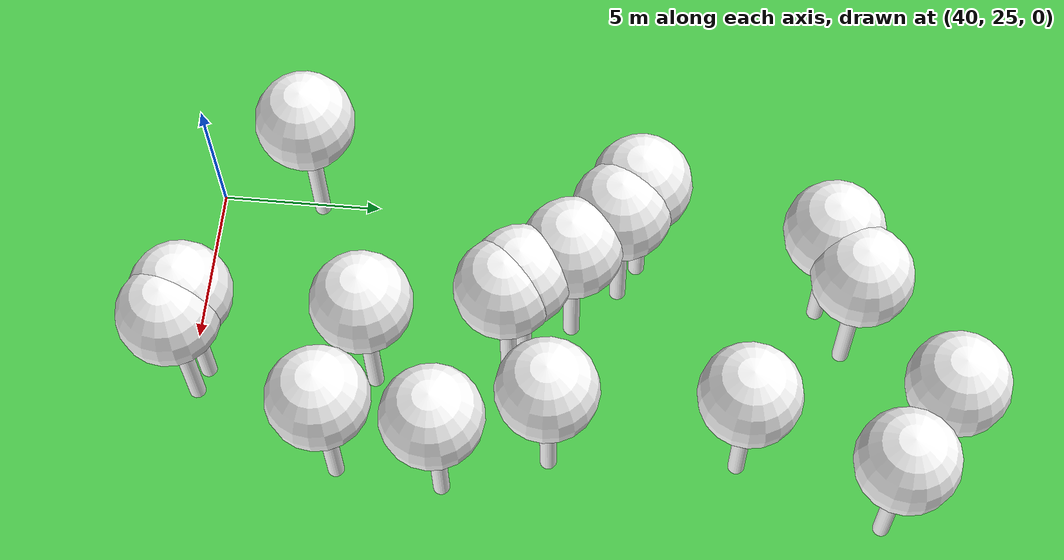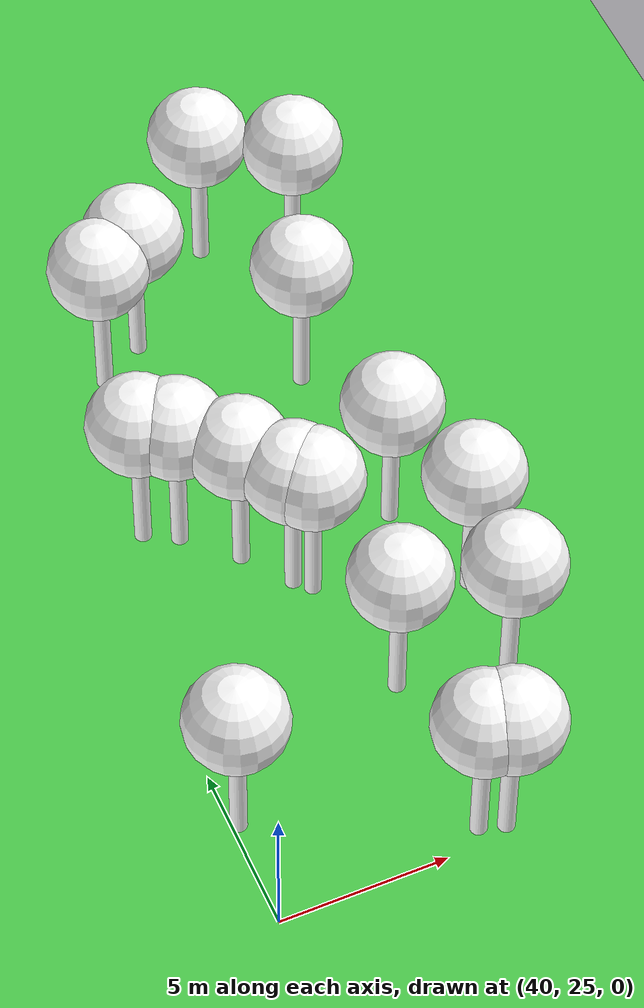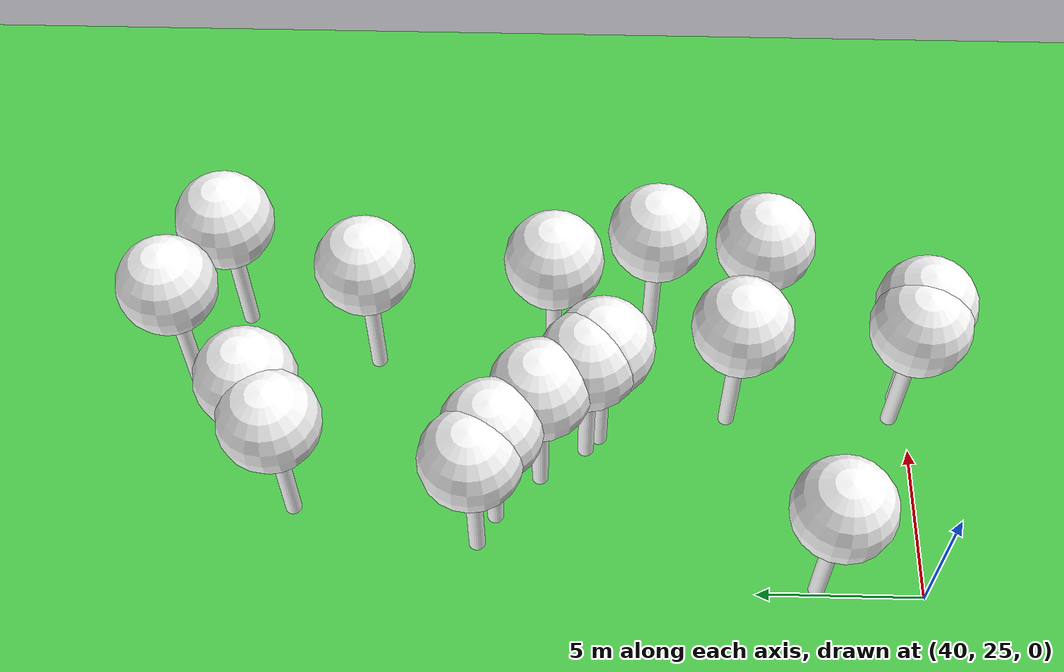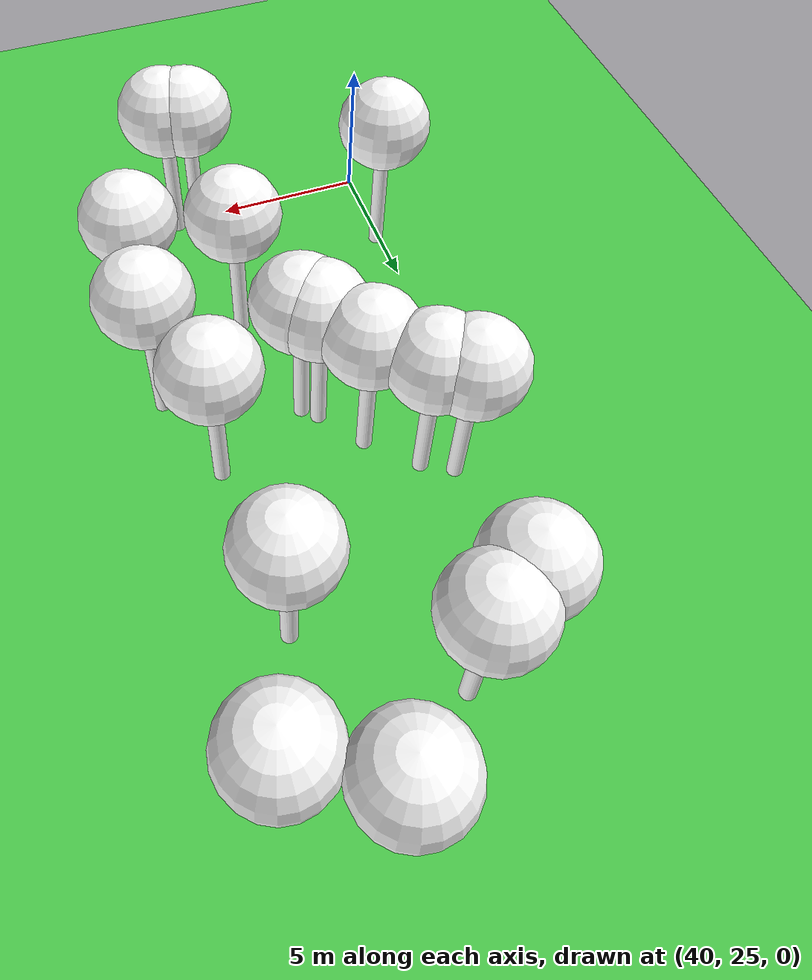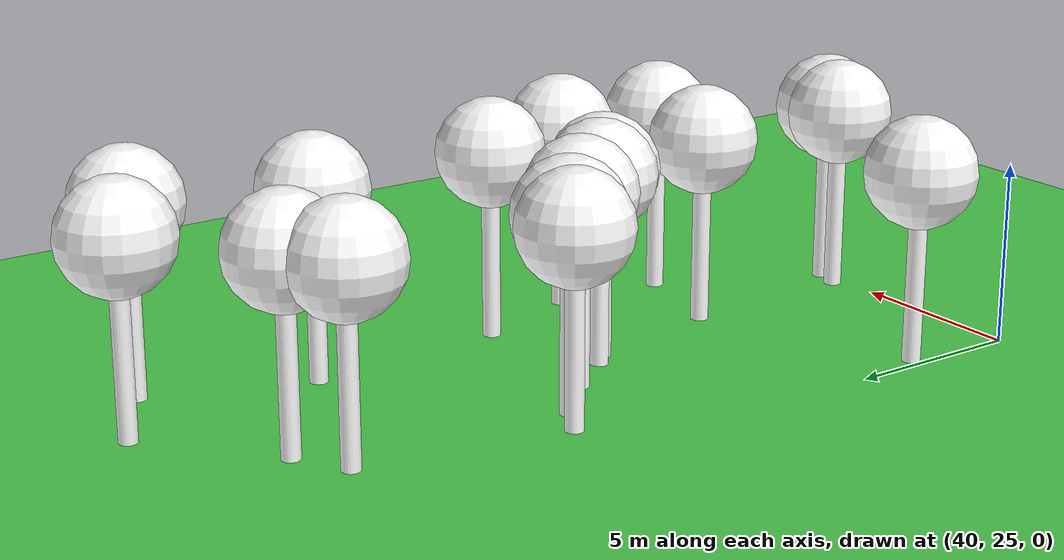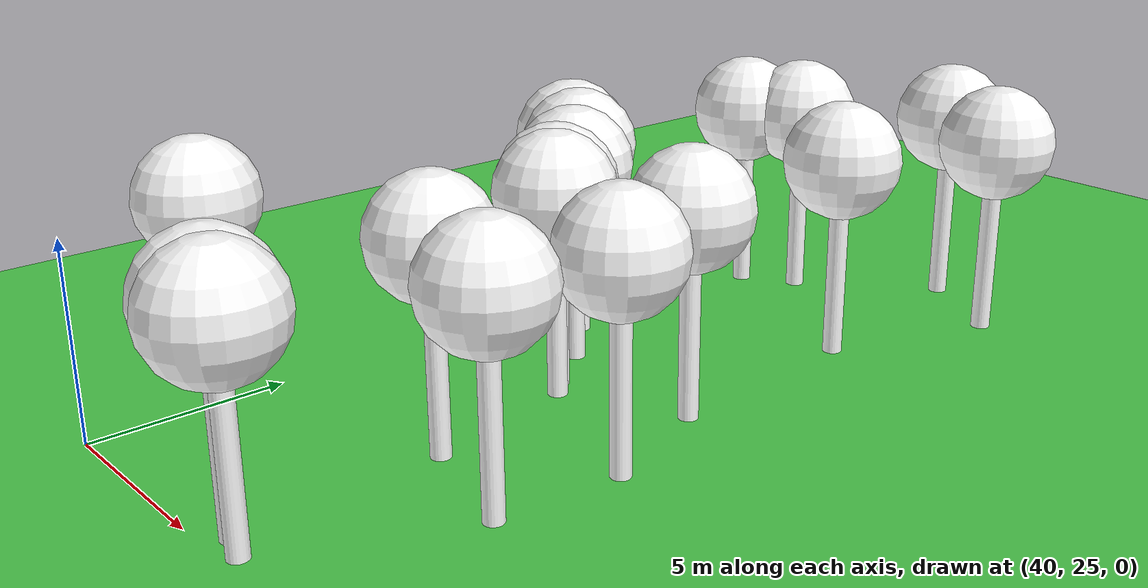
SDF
<sdf version="1.8">
 <world name="forest_world">
  <model name="tree_simple426">
   <static>1</static>
   <link name="link">
    <pose>0 0 0.1 0 -0 0</pose>
    <collision name="collision_trunk">
     <pose>0 0 2 0 -0 0</pose>
     <geometry><cylinder><radius>0.25</radius><length>4</length></cylinder></geometry>
    </collision>
    <collision name="collision_treetop">
     <pose>0 0 5.2 0 -0 0</pose>
     <geometry><sphere><radius>1.5</radius></sphere></geometry>
    </collision>
    <visual name="trunk_426">
     <pose>0 0 2 0 -0 0</pose>
     <geometry><cylinder><radius>0.25</radius><length>4</length></cylinder></geometry>
     <material>
      <ambient>0.5 0.5 0.5 1</ambient>
      <diffuse>1.0 1.0 1.0 1</diffuse>
      <specular>0.0 0.0 0.0 1</specular>
      <pbr>
       <metal>
        <albedo_map>file://textures/tree_simple_trunk.jpg</albedo_map>
        <metalness>0.0</metalness>
        <roughness>0.8</roughness>
       </metal>
      </pbr>
     </material>
    </visual>
    <visual name="treetop_426">
     <pose>0 0 5.2 0 -0 0</pose>
     <geometry><sphere><radius>1.5</radius></sphere></geometry>
     <material>
      <ambient>0.5 0.5 0.5 1</ambient>
      <diffuse>1.0 1.0 1.0 1</diffuse>
      <specular>0.0 0.0 0.0 1</specular>
      <pbr>
       <metal>
        <albedo_map>file://textures/tree_simple_treetop.jpg</albedo_map>
        <metalness>0.0</metalness>
        <roughness>0.9</roughness>
       </metal>
      </pbr>
     </material>
    </visual>
   </link>
   <pose>48.2961501598 36.1951986296 0 0 -0 0</pose>
  </model>
  <model name="tree_simple414">
   <static>1</static>
   <link name="link">
    <pose>0 0 0.1 0 -0 0</pose>
    <collision name="collision_trunk">
     <pose>0 0 2 0 -0 0</pose>
     <geometry><cylinder><radius>0.25</radius><length>4</length></cylinder></geometry>
    </collision>
    <collision name="collision_treetop">
     <pose>0 0 5.2 0 -0 0</pose>
     <geometry><sphere><radius>1.5</radius></sphere></geometry>
    </collision>
    <visual name="trunk_414">
     <pose>0 0 2 0 -0 0</pose>
     <geometry><cylinder><radius>0.25</radius><length>4</length></cylinder></geometry>
     <material>
      <ambient>0.5 0.5 0.5 1</ambient>
      <diffuse>1.0 1.0 1.0 1</diffuse>
      <specular>0.0 0.0 0.0 1</specular>
      <pbr>
       <metal>
        <albedo_map>file://textures/tree_simple_trunk.jpg</albedo_map>
        <metalness>0.0</metalness>
        <roughness>0.8</roughness>
       </metal>
      </pbr>
     </material>
    </visual>
    <visual name="treetop_414">
     <pose>0 0 5.2 0 -0 0</pose>
     <geometry><sphere><radius>1.5</radius></sphere></geometry>
     <material>
      <ambient>0.5 0.5 0.5 1</ambient>
      <diffuse>1.0 1.0 1.0 1</diffuse>
      <specular>0.0 0.0 0.0 1</specular>
      <pbr>
       <metal>
        <albedo_map>file://textures/tree_simple_treetop.jpg</albedo_map>
        <metalness>0.0</metalness>
        <roughness>0.9</roughness>
       </metal>
      </pbr>
     </material>
    </visual>
   </link>
   <pose>44.7953546514 35.1223055557 0 0 -0 0</pose>
  </model>
  <model name="tree_simple402">
   <static>1</static>
   <link name="link">
    <pose>0 0 0.1 0 -0 0</pose>
    <collision name="collision_trunk">
     <pose>0 0 2 0 -0 0</pose>
     <geometry><cylinder><radius>0.25</radius><length>4</length></cylinder></geometry>
    </collision>
    <collision name="collision_treetop">
     <pose>0 0 5.2 0 -0 0</pose>
     <geometry><sphere><radius>1.5</radius></sphere></geometry>
    </collision>
    <visual name="trunk_402">
     <pose>0 0 2 0 -0 0</pose>
     <geometry><cylinder><radius>0.25</radius><length>4</length></cylinder></geometry>
     <material>
      <ambient>0.5 0.5 0.5 1</ambient>
      <diffuse>1.0 1.0 1.0 1</diffuse>
      <specular>0.0 0.0 0.0 1</specular>
      <pbr>
       <metal>
        <albedo_map>file://textures/tree_simple_trunk.jpg</albedo_map>
        <metalness>0.0</metalness>
        <roughness>0.8</roughness>
       </metal>
      </pbr>
     </material>
    </visual>
    <visual name="treetop_402">
     <pose>0 0 5.2 0 -0 0</pose>
     <geometry><sphere><radius>1.5</radius></sphere></geometry>
     <material>
      <ambient>0.5 0.5 0.5 1</ambient>
      <diffuse>1.0 1.0 1.0 1</diffuse>
      <specular>0.0 0.0 0.0 1</specular>
      <pbr>
       <metal>
        <albedo_map>file://textures/tree_simple_treetop.jpg</albedo_map>
        <metalness>0.0</metalness>
        <roughness>0.9</roughness>
       </metal>
      </pbr>
     </material>
    </visual>
   </link>
   <pose>46.1530364681 25.5114731744 0 0 -0 0</pose>
  </model>
  <model name="tree_simple388">
   <static>1</static>
   <link name="link">
    <pose>0 0 0.1 0 -0 0</pose>
    <collision name="collision_trunk">
     <pose>0 0 2 0 -0 0</pose>
     <geometry><cylinder><radius>0.25</radius><length>4</length></cylinder></geometry>
    </collision>
    <collision name="collision_treetop">
     <pose>0 0 5.2 0 -0 0</pose>
     <geometry><sphere><radius>1.5</radius></sphere></geometry>
    </collision>
    <visual name="trunk_388">
     <pose>0 0 2 0 -0 0</pose>
     <geometry><cylinder><radius>0.25</radius><length>4</length></cylinder></geometry>
     <material>
      <ambient>0.5 0.5 0.5 1</ambient>
      <diffuse>1.0 1.0 1.0 1</diffuse>
      <specular>0.0 0.0 0.0 1</specular>
      <pbr>
       <metal>
        <albedo_map>file://textures/tree_simple_trunk.jpg</albedo_map>
        <metalness>0.0</metalness>
        <roughness>0.8</roughness>
       </metal>
      </pbr>
     </material>
    </visual>
    <visual name="treetop_388">
     <pose>0 0 5.2 0 -0 0</pose>
     <geometry><sphere><radius>1.5</radius></sphere></geometry>
     <material>
      <ambient>0.5 0.5 0.5 1</ambient>
      <diffuse>1.0 1.0 1.0 1</diffuse>
      <specular>0.0 0.0 0.0 1</specular>
      <pbr>
       <metal>
        <albedo_map>file://textures/tree_simple_treetop.jpg</albedo_map>
        <metalness>0.0</metalness>
        <roughness>0.9</roughness>
       </metal>
      </pbr>
     </material>
    </visual>
   </link>
   <pose>42.4041487093 37.8396173547 0 0 -0 0</pose>
  </model>
  <model name="tree_simple384">
   <static>1</static>
   <link name="link">
    <pose>0 0 0.1 0 -0 0</pose>
    <collision name="collision_trunk">
     <pose>0 0 2 0 -0 0</pose>
     <geometry><cylinder><radius>0.25</radius><length>4</length></cylinder></geometry>
    </collision>
    <collision name="collision_treetop">
     <pose>0 0 5.2 0 -0 0</pose>
     <geometry><sphere><radius>1.5</radius></sphere></geometry>
    </collision>
    <visual name="trunk_384">
     <pose>0 0 2 0 -0 0</pose>
     <geometry><cylinder><radius>0.25</radius><length>4</length></cylinder></geometry>
     <material>
      <ambient>0.5 0.5 0.5 1</ambient>
      <diffuse>1.0 1.0 1.0 1</diffuse>
      <specular>0.0 0.0 0.0 1</specular>
      <pbr>
       <metal>
        <albedo_map>file://textures/tree_simple_trunk.jpg</albedo_map>
        <metalness>0.0</metalness>
        <roughness>0.8</roughness>
       </metal>
      </pbr>
     </material>
    </visual>
    <visual name="treetop_384">
     <pose>0 0 5.2 0 -0 0</pose>
     <geometry><sphere><radius>1.5</radius></sphere></geometry>
     <material>
      <ambient>0.5 0.5 0.5 1</ambient>
      <diffuse>1.0 1.0 1.0 1</diffuse>
      <specular>0.0 0.0 0.0 1</specular>
      <pbr>
       <metal>
        <albedo_map>file://textures/tree_simple_treetop.jpg</albedo_map>
        <metalness>0.0</metalness>
        <roughness>0.9</roughness>
       </metal>
      </pbr>
     </material>
    </visual>
   </link>
   <pose>47.965270182 41.8315973536 0 0 -0 0</pose>
  </model>
  <model name="tree_simple337">
   <static>1</static>
   <link name="link">
    <pose>0 0 0.1 0 -0 0</pose>
    <collision name="collision_trunk">
     <pose>0 0 2 0 -0 0</pose>
     <geometry><cylinder><radius>0.25</radius><length>4</length></cylinder></geometry>
    </collision>
    <collision name="collision_treetop">
     <pose>0 0 5.2 0 -0 0</pose>
     <geometry><sphere><radius>1.5</radius></sphere></geometry>
    </collision>
    <visual name="trunk_337">
     <pose>0 0 2 0 -0 0</pose>
     <geometry><cylinder><radius>0.25</radius><length>4</length></cylinder></geometry>
     <material>
      <ambient>0.5 0.5 0.5 1</ambient>
      <diffuse>1.0 1.0 1.0 1</diffuse>
      <specular>0.0 0.0 0.0 1</specular>
      <pbr>
       <metal>
        <albedo_map>file://textures/tree_simple_trunk.jpg</albedo_map>
        <metalness>0.0</metalness>
        <roughness>0.8</roughness>
       </metal>
      </pbr>
     </material>
    </visual>
    <visual name="treetop_337">
     <pose>0 0 5.2 0 -0 0</pose>
     <geometry><sphere><radius>1.5</radius></sphere></geometry>
     <material>
      <ambient>0.5 0.5 0.5 1</ambient>
      <diffuse>1.0 1.0 1.0 1</diffuse>
      <specular>0.0 0.0 0.0 1</specular>
      <pbr>
       <metal>
        <albedo_map>file://textures/tree_simple_treetop.jpg</albedo_map>
        <metalness>0.0</metalness>
        <roughness>0.9</roughness>
       </metal>
      </pbr>
     </material>
    </visual>
   </link>
   <pose>43.9549385006 44.8684303608 0 0 -0 0</pose>
  </model>
  <model name="tree_simple306">
   <static>1</static>
   <link name="link">
    <pose>0 0 0.1 0 -0 0</pose>
    <collision name="collision_trunk">
     <pose>0 0 2 0 -0 0</pose>
     <geometry><cylinder><radius>0.25</radius><length>4</length></cylinder></geometry>
    </collision>
    <collision name="collision_treetop">
     <pose>0 0 5.2 0 -0 0</pose>
     <geometry><sphere><radius>1.5</radius></sphere></geometry>
    </collision>
    <visual name="trunk_306">
     <pose>0 0 2 0 -0 0</pose>
     <geometry><cylinder><radius>0.25</radius><length>4</length></cylinder></geometry>
     <material>
      <ambient>0.5 0.5 0.5 1</ambient>
      <diffuse>1.0 1.0 1.0 1</diffuse>
      <specular>0.0 0.0 0.0 1</specular>
      <pbr>
       <metal>
        <albedo_map>file://textures/tree_simple_trunk.jpg</albedo_map>
        <metalness>0.0</metalness>
        <roughness>0.8</roughness>
       </metal>
      </pbr>
     </material>
    </visual>
    <visual name="treetop_306">
     <pose>0 0 5.2 0 -0 0</pose>
     <geometry><sphere><radius>1.5</radius></sphere></geometry>
     <material>
      <ambient>0.5 0.5 0.5 1</ambient>
      <diffuse>1.0 1.0 1.0 1</diffuse>
      <specular>0.0 0.0 0.0 1</specular>
      <pbr>
       <metal>
        <albedo_map>file://textures/tree_simple_treetop.jpg</albedo_map>
        <metalness>0.0</metalness>
        <roughness>0.9</roughness>
       </metal>
      </pbr>
     </material>
    </visual>
   </link>
   <pose>41.4749799485 38.3641433375 0 0 -0 0</pose>
  </model>
  <model name="tree_simple265">
   <static>1</static>
   <link name="link">
    <pose>0 0 0.1 0 -0 0</pose>
    <collision name="collision_trunk">
     <pose>0 0 2 0 -0 0</pose>
     <geometry><cylinder><radius>0.25</radius><length>4</length></cylinder></geometry>
    </collision>
    <collision name="collision_treetop">
     <pose>0 0 5.2 0 -0 0</pose>
     <geometry><sphere><radius>1.5</radius></sphere></geometry>
    </collision>
    <visual name="trunk_265">
     <pose>0 0 2 0 -0 0</pose>
     <geometry><cylinder><radius>0.25</radius><length>4</length></cylinder></geometry>
     <material>
      <ambient>0.5 0.5 0.5 1</ambient>
      <diffuse>1.0 1.0 1.0 1</diffuse>
      <specular>0.0 0.0 0.0 1</specular>
      <pbr>
       <metal>
        <albedo_map>file://textures/tree_simple_trunk.jpg</albedo_map>
        <metalness>0.0</metalness>
        <roughness>0.8</roughness>
       </metal>
      </pbr>
     </material>
    </visual>
    <visual name="treetop_265">
     <pose>0 0 5.2 0 -0 0</pose>
     <geometry><sphere><radius>1.5</radius></sphere></geometry>
     <material>
      <ambient>0.5 0.5 0.5 1</ambient>
      <diffuse>1.0 1.0 1.0 1</diffuse>
      <specular>0.0 0.0 0.0 1</specular>
      <pbr>
       <metal>
        <albedo_map>file://textures/tree_simple_treetop.jpg</albedo_map>
        <metalness>0.0</metalness>
        <roughness>0.9</roughness>
       </metal>
      </pbr>
     </material>
    </visual>
   </link>
   <pose>49.0905511153 29.866561196 0 0 -0 0</pose>
  </model>
  <model name="tree_simple238">
   <static>1</static>
   <link name="link">
    <pose>0 0 0.1 0 -0 0</pose>
    <collision name="collision_trunk">
     <pose>0 0 2 0 -0 0</pose>
     <geometry><cylinder><radius>0.25</radius><length>4</length></cylinder></geometry>
    </collision>
    <collision name="collision_treetop">
     <pose>0 0 5.2 0 -0 0</pose>
     <geometry><sphere><radius>1.5</radius></sphere></geometry>
    </collision>
    <visual name="trunk_238">
     <pose>0 0 2 0 -0 0</pose>
     <geometry><cylinder><radius>0.25</radius><length>4</length></cylinder></geometry>
     <material>
      <ambient>0.5 0.5 0.5 1</ambient>
      <diffuse>1.0 1.0 1.0 1</diffuse>
      <specular>0.0 0.0 0.0 1</specular>
      <pbr>
       <metal>
        <albedo_map>file://textures/tree_simple_trunk.jpg</albedo_map>
        <metalness>0.0</metalness>
        <roughness>0.8</roughness>
       </metal>
      </pbr>
     </material>
    </visual>
    <visual name="treetop_238">
     <pose>0 0 5.2 0 -0 0</pose>
     <geometry><sphere><radius>1.5</radius></sphere></geometry>
     <material>
      <ambient>0.5 0.5 0.5 1</ambient>
      <diffuse>1.0 1.0 1.0 1</diffuse>
      <specular>0.0 0.0 0.0 1</specular>
      <pbr>
       <metal>
        <albedo_map>file://textures/tree_simple_treetop.jpg</albedo_map>
        <metalness>0.0</metalness>
        <roughness>0.9</roughness>
       </metal>
      </pbr>
     </material>
    </visual>
   </link>
   <pose>46.8869167901 25.2834545483 0 0 -0 0</pose>
  </model>
  <model name="tree_simple230">
   <static>1</static>
   <link name="link">
    <pose>0 0 0.1 0 -0 0</pose>
    <collision name="collision_trunk">
     <pose>0 0 2 0 -0 0</pose>
     <geometry><cylinder><radius>0.25</radius><length>4</length></cylinder></geometry>
    </collision>
    <collision name="collision_treetop">
     <pose>0 0 5.2 0 -0 0</pose>
     <geometry><sphere><radius>1.5</radius></sphere></geometry>
    </collision>
    <visual name="trunk_230">
     <pose>0 0 2 0 -0 0</pose>
     <geometry><cylinder><radius>0.25</radius><length>4</length></cylinder></geometry>
     <material>
      <ambient>0.5 0.5 0.5 1</ambient>
      <diffuse>1.0 1.0 1.0 1</diffuse>
      <specular>0.0 0.0 0.0 1</specular>
      <pbr>
       <metal>
        <albedo_map>file://textures/tree_simple_trunk.jpg</albedo_map>
        <metalness>0.0</metalness>
        <roughness>0.8</roughness>
       </metal>
      </pbr>
     </material>
    </visual>
    <visual name="treetop_230">
     <pose>0 0 5.2 0 -0 0</pose>
     <geometry><sphere><radius>1.5</radius></sphere></geometry>
     <material>
      <ambient>0.5 0.5 0.5 1</ambient>
      <diffuse>1.0 1.0 1.0 1</diffuse>
      <specular>0.0 0.0 0.0 1</specular>
      <pbr>
       <metal>
        <albedo_map>file://textures/tree_simple_treetop.jpg</albedo_map>
        <metalness>0.0</metalness>
        <roughness>0.9</roughness>
       </metal>
      </pbr>
     </material>
    </visual>
   </link>
   <pose>49.3839982887 33.0886722223 0 0 -0 0</pose>
  </model>
  <model name="tree_simple197">
   <static>1</static>
   <link name="link">
    <pose>0 0 0.1 0 -0 0</pose>
    <collision name="collision_trunk">
     <pose>0 0 2 0 -0 0</pose>
     <geometry><cylinder><radius>0.25</radius><length>4</length></cylinder></geometry>
    </collision>
    <collision name="collision_treetop">
     <pose>0 0 5.2 0 -0 0</pose>
     <geometry><sphere><radius>1.5</radius></sphere></geometry>
    </collision>
    <visual name="trunk_197">
     <pose>0 0 2 0 -0 0</pose>
     <geometry><cylinder><radius>0.25</radius><length>4</length></cylinder></geometry>
     <material>
      <ambient>0.5 0.5 0.5 1</ambient>
      <diffuse>1.0 1.0 1.0 1</diffuse>
      <specular>0.0 0.0 0.0 1</specular>
      <pbr>
       <metal>
        <albedo_map>file://textures/tree_simple_trunk.jpg</albedo_map>
        <metalness>0.0</metalness>
        <roughness>0.8</roughness>
       </metal>
      </pbr>
     </material>
    </visual>
    <visual name="treetop_197">
     <pose>0 0 5.2 0 -0 0</pose>
     <geometry><sphere><radius>1.5</radius></sphere></geometry>
     <material>
      <ambient>0.5 0.5 0.5 1</ambient>
      <diffuse>1.0 1.0 1.0 1</diffuse>
      <specular>0.0 0.0 0.0 1</specular>
      <pbr>
       <metal>
        <albedo_map>file://textures/tree_simple_treetop.jpg</albedo_map>
        <metalness>0.0</metalness>
        <roughness>0.9</roughness>
       </metal>
      </pbr>
     </material>
    </visual>
   </link>
   <pose>45.2259514073 34.7129577048 0 0 -0 0</pose>
  </model>
  <model name="tree_simple150">
   <static>1</static>
   <link name="link">
    <pose>0 0 0.1 0 -0 0</pose>
    <collision name="collision_trunk">
     <pose>0 0 2 0 -0 0</pose>
     <geometry><cylinder><radius>0.25</radius><length>4</length></cylinder></geometry>
    </collision>
    <collision name="collision_treetop">
     <pose>0 0 5.2 0 -0 0</pose>
     <geometry><sphere><radius>1.5</radius></sphere></geometry>
    </collision>
    <visual name="trunk_150">
     <pose>0 0 2 0 -0 0</pose>
     <geometry><cylinder><radius>0.25</radius><length>4</length></cylinder></geometry>
     <material>
      <ambient>0.5 0.5 0.5 1</ambient>
      <diffuse>1.0 1.0 1.0 1</diffuse>
      <specular>0.0 0.0 0.0 1</specular>
      <pbr>
       <metal>
        <albedo_map>file://textures/tree_simple_trunk.jpg</albedo_map>
        <metalness>0.0</metalness>
        <roughness>0.8</roughness>
       </metal>
      </pbr>
     </material>
    </visual>
    <visual name="treetop_150">
     <pose>0 0 5.2 0 -0 0</pose>
     <geometry><sphere><radius>1.5</radius></sphere></geometry>
     <material>
      <ambient>0.5 0.5 0.5 1</ambient>
      <diffuse>1.0 1.0 1.0 1</diffuse>
      <specular>0.0 0.0 0.0 1</specular>
      <pbr>
       <metal>
        <albedo_map>file://textures/tree_simple_treetop.jpg</albedo_map>
        <metalness>0.0</metalness>
        <roughness>0.9</roughness>
       </metal>
      </pbr>
     </material>
    </visual>
   </link>
   <pose>40.1655547132 28.2074332225 0 0 -0 0</pose>
  </model>
  <model name="tree_simple131">
   <static>1</static>
   <link name="link">
    <pose>0 0 0.1 0 -0 0</pose>
    <collision name="collision_trunk">
     <pose>0 0 2 0 -0 0</pose>
     <geometry><cylinder><radius>0.25</radius><length>4</length></cylinder></geometry>
    </collision>
    <collision name="collision_treetop">
     <pose>0 0 5.2 0 -0 0</pose>
     <geometry><sphere><radius>1.5</radius></sphere></geometry>
    </collision>
    <visual name="trunk_131">
     <pose>0 0 2 0 -0 0</pose>
     <geometry><cylinder><radius>0.25</radius><length>4</length></cylinder></geometry>
     <material>
      <ambient>0.5 0.5 0.5 1</ambient>
      <diffuse>1.0 1.0 1.0 1</diffuse>
      <specular>0.0 0.0 0.0 1</specular>
      <pbr>
       <metal>
        <albedo_map>file://textures/tree_simple_trunk.jpg</albedo_map>
        <metalness>0.0</metalness>
        <roughness>0.8</roughness>
       </metal>
      </pbr>
     </material>
    </visual>
    <visual name="treetop_131">
     <pose>0 0 5.2 0 -0 0</pose>
     <geometry><sphere><radius>1.5</radius></sphere></geometry>
     <material>
      <ambient>0.5 0.5 0.5 1</ambient>
      <diffuse>1.0 1.0 1.0 1</diffuse>
      <specular>0.0 0.0 0.0 1</specular>
      <pbr>
       <metal>
        <albedo_map>file://textures/tree_simple_treetop.jpg</albedo_map>
        <metalness>0.0</metalness>
        <roughness>0.9</roughness>
       </metal>
      </pbr>
     </material>
    </visual>
   </link>
   <pose>46.034478037 30.677477771 0 0 -0 0</pose>
  </model>
  <model name="tree_simple99">
   <static>1</static>
   <link name="link">
    <pose>0 0 0.1 0 -0 0</pose>
    <collision name="collision_trunk">
     <pose>0 0 2 0 -0 0</pose>
     <geometry><cylinder><radius>0.25</radius><length>4</length></cylinder></geometry>
    </collision>
    <collision name="collision_treetop">
     <pose>0 0 5.2 0 -0 0</pose>
     <geometry><sphere><radius>1.5</radius></sphere></geometry>
    </collision>
    <visual name="trunk_99">
     <pose>0 0 2 0 -0 0</pose>
     <geometry><cylinder><radius>0.25</radius><length>4</length></cylinder></geometry>
     <material>
      <ambient>0.5 0.5 0.5 1</ambient>
      <diffuse>1.0 1.0 1.0 1</diffuse>
      <specular>0.0 0.0 0.0 1</specular>
      <pbr>
       <metal>
        <albedo_map>file://textures/tree_simple_trunk.jpg</albedo_map>
        <metalness>0.0</metalness>
        <roughness>0.8</roughness>
       </metal>
      </pbr>
     </material>
    </visual>
    <visual name="treetop_99">
     <pose>0 0 5.2 0 -0 0</pose>
     <geometry><sphere><radius>1.5</radius></sphere></geometry>
     <material>
      <ambient>0.5 0.5 0.5 1</ambient>
      <diffuse>1.0 1.0 1.0 1</diffuse>
      <specular>0.0 0.0 0.0 1</specular>
      <pbr>
       <metal>
        <albedo_map>file://textures/tree_simple_treetop.jpg</albedo_map>
        <metalness>0.0</metalness>
        <roughness>0.9</roughness>
       </metal>
      </pbr>
     </material>
    </visual>
   </link>
   <pose>43.7646885834 36.5094094544 0 0 -0 0</pose>
  </model>
  <model name="tree_simple65">
   <static>1</static>
   <link name="link">
    <pose>0 0 0.1 0 -0 0</pose>
    <collision name="collision_trunk">
     <pose>0 0 2 0 -0 0</pose>
     <geometry><cylinder><radius>0.25</radius><length>4</length></cylinder></geometry>
    </collision>
    <collision name="collision_treetop">
     <pose>0 0 5.2 0 -0 0</pose>
     <geometry><sphere><radius>1.5</radius></sphere></geometry>
    </collision>
    <visual name="trunk_65">
     <pose>0 0 2 0 -0 0</pose>
     <geometry><cylinder><radius>0.25</radius><length>4</length></cylinder></geometry>
     <material>
      <ambient>0.5 0.5 0.5 1</ambient>
      <diffuse>1.0 1.0 1.0 1</diffuse>
      <specular>0.0 0.0 0.0 1</specular>
      <pbr>
       <metal>
        <albedo_map>file://textures/tree_simple_trunk.jpg</albedo_map>
        <metalness>0.0</metalness>
        <roughness>0.8</roughness>
       </metal>
      </pbr>
     </material>
    </visual>
    <visual name="treetop_65">
     <pose>0 0 5.2 0 -0 0</pose>
     <geometry><sphere><radius>1.5</radius></sphere></geometry>
     <material>
      <ambient>0.5 0.5 0.5 1</ambient>
      <diffuse>1.0 1.0 1.0 1</diffuse>
      <specular>0.0 0.0 0.0 1</specular>
      <pbr>
       <metal>
        <albedo_map>file://textures/tree_simple_treetop.jpg</albedo_map>
        <metalness>0.0</metalness>
        <roughness>0.9</roughness>
       </metal>
      </pbr>
     </material>
    </visual>
   </link>
   <pose>42.5612978855 44.0438819022 0 0 -0 0</pose>
  </model>
  <model name="tree_simple33">
   <static>1</static>
   <link name="link">
    <pose>0 0 0.1 0 -0 0</pose>
    <collision name="collision_trunk">
     <pose>0 0 2 0 -0 0</pose>
     <geometry><cylinder><radius>0.25</radius><length>4</length></cylinder></geometry>
    </collision>
    <collision name="collision_treetop">
     <pose>0 0 5.2 0 -0 0</pose>
     <geometry><sphere><radius>1.5</radius></sphere></geometry>
    </collision>
    <visual name="trunk_33">
     <pose>0 0 2 0 -0 0</pose>
     <geometry><cylinder><radius>0.25</radius><length>4</length></cylinder></geometry>
     <material>
      <ambient>0.5 0.5 0.5 1</ambient>
      <diffuse>1.0 1.0 1.0 1</diffuse>
      <specular>0.0 0.0 0.0 1</specular>
      <pbr>
       <metal>
        <albedo_map>file://textures/tree_simple_trunk.jpg</albedo_map>
        <metalness>0.0</metalness>
        <roughness>0.8</roughness>
       </metal>
      </pbr>
     </material>
    </visual>
    <visual name="treetop_33">
     <pose>0 0 5.2 0 -0 0</pose>
     <geometry><sphere><radius>1.5</radius></sphere></geometry>
     <material>
      <ambient>0.5 0.5 0.5 1</ambient>
      <diffuse>1.0 1.0 1.0 1</diffuse>
      <specular>0.0 0.0 0.0 1</specular>
      <pbr>
       <metal>
        <albedo_map>file://textures/tree_simple_treetop.jpg</albedo_map>
        <metalness>0.0</metalness>
        <roughness>0.9</roughness>
       </metal>
      </pbr>
     </material>
    </visual>
   </link>
   <pose>49.5679198659 46.2009891227 0 0 -0 0</pose>
  </model>
  <model name="tree_simple11">
   <static>1</static>
   <link name="link">
    <pose>0 0 0.1 0 -0 0</pose>
    <collision name="collision_trunk">
     <pose>0 0 2 0 -0 0</pose>
     <geometry><cylinder><radius>0.25</radius><length>4</length></cylinder></geometry>
    </collision>
    <collision name="collision_treetop">
     <pose>0 0 5.2 0 -0 0</pose>
     <geometry><sphere><radius>1.5</radius></sphere></geometry>
    </collision>
    <visual name="trunk_11">
     <pose>0 0 2 0 -0 0</pose>
     <geometry><cylinder><radius>0.25</radius><length>4</length></cylinder></geometry>
     <material>
      <ambient>0.5 0.5 0.5 1</ambient>
      <diffuse>1.0 1.0 1.0 1</diffuse>
      <specular>0.0 0.0 0.0 1</specular>
      <pbr>
       <metal>
        <albedo_map>file://textures/tree_simple_trunk.jpg</albedo_map>
        <metalness>0.0</metalness>
        <roughness>0.8</roughness>
       </metal>
      </pbr>
     </material>
    </visual>
    <visual name="treetop_11">
     <pose>0 0 5.2 0 -0 0</pose>
     <geometry><sphere><radius>1.5</radius></sphere></geometry>
     <material>
      <ambient>0.5 0.5 0.5 1</ambient>
      <diffuse>1.0 1.0 1.0 1</diffuse>
      <specular>0.0 0.0 0.0 1</specular>
      <pbr>
       <metal>
        <albedo_map>file://textures/tree_simple_treetop.jpg</albedo_map>
        <metalness>0.0</metalness>
        <roughness>0.9</roughness>
       </metal>
      </pbr>
     </material>
    </visual>
   </link>
   <pose>47.1204794218 47.5889686544 0 0 -0 0</pose>
  </model>
  <model name="ground_plane">
   <static>true</static>
   <link name="link">
    <collision name="collision">
     <geometry><plane><normal>0 0 1</normal><size>250 250</size></plane></geometry>
     <surface><friction><ode><mu>1</mu><mu2>1</mu2></ode></friction></surface>
    </collision>
    <visual name="grass">
     <cast_shadows>false</cast_shadows>
     <geometry><mesh><uri>file://textures/grass_plane.dae</uri><scale>1 1 1</scale></mesh></geometry>
     <material>
      <ambient>0.2 0.6 0.2 1</ambient>
      <diffuse>0.3 0.8 0.3 1</diffuse>
      <specular>0.1 0.1 0.1 1</specular>
      <pbr>
       <metal>
        <albedo_map>file://textures/grass_seamless.jpg</albedo_map>
        <metalness>0.0</metalness>
        <roughness>0.9</roughness>
       </metal>
      </pbr>
     </material>
    </visual>
   </link>
  </model>
 </world>
</sdf>
